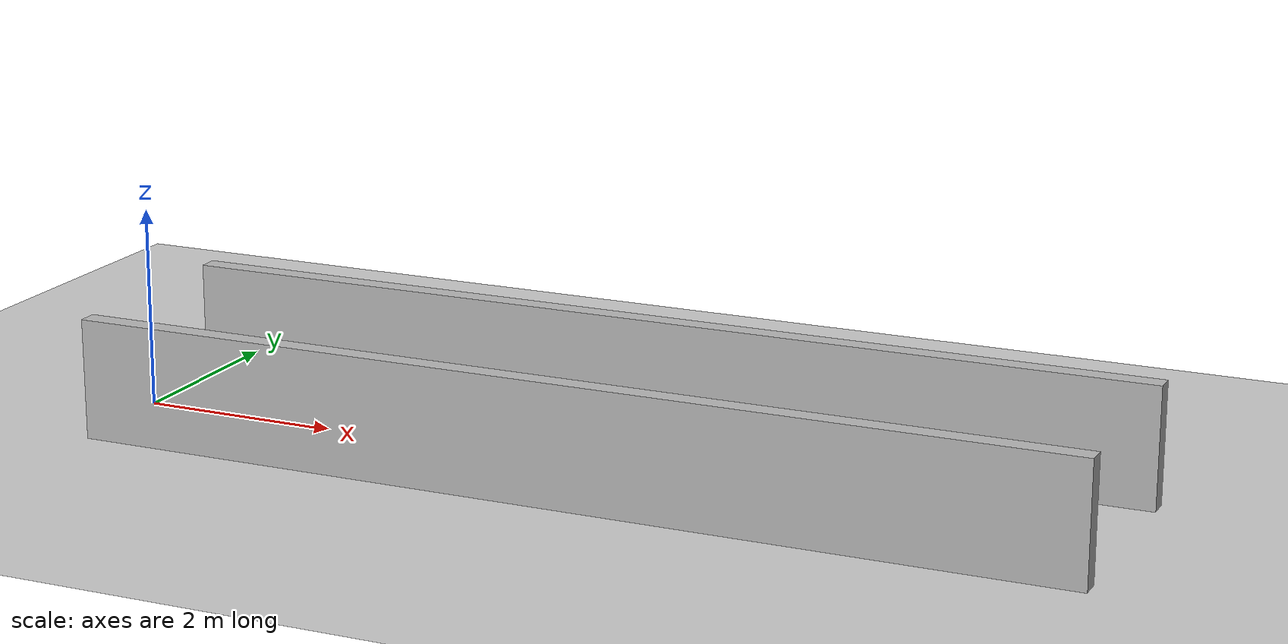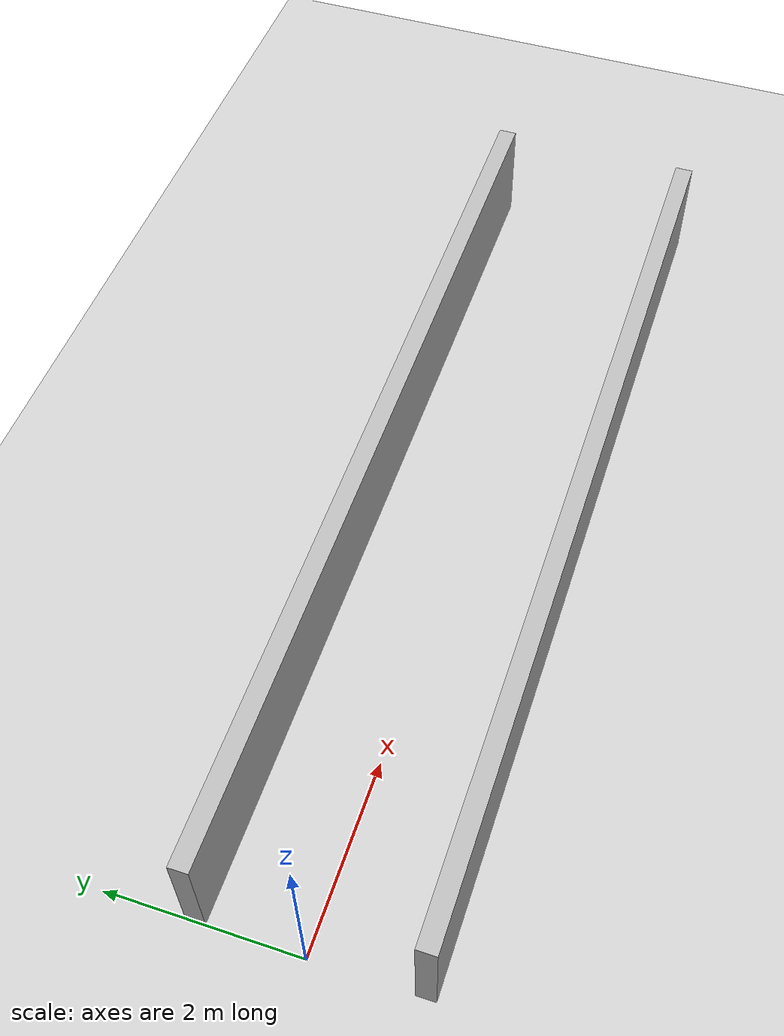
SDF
<?xml version="1.0"?>
<sdf version="1.6">
  <world name="v2-04g-p2-q1-support-corridor-support-s5345">
    <gravity>0 0 -9.81</gravity>
    <physics name="v2_deterministic" type="ode">
      <max_step_size>0.002</max_step_size>
      <real_time_update_rate>500</real_time_update_rate>
    </physics>
    <include>
      <uri>model://sun</uri>
    </include>
    <include>
      <uri>model://ground_plane</uri>
    </include>
    <model name="corridor-left">
      <static>true</static>
      <pose>5.008791305 1.092934187 0.600000000 0 0 0.001942883</pose>
      <link name="link">
        <collision name="collision">
          <geometry>
            <box>
              <size>10.000000 0.200000 1.200000</size>
            </box>
          </geometry>
        </collision>
        <visual name="visual">
          <geometry>
            <box>
              <size>10.000000 0.200000 1.200000</size>
            </box>
          </geometry>
        </visual>
      </link>
    </model>
    <model name="corridor-right">
      <static>true</static>
      <pose>5.006149236 -1.113169450 0.600000000 0 0 0.000320282</pose>
      <link name="link">
        <collision name="collision">
          <geometry>
            <box>
              <size>10.000000 0.200000 1.200000</size>
            </box>
          </geometry>
        </collision>
        <visual name="visual">
          <geometry>
            <box>
              <size>10.000000 0.200000 1.200000</size>
            </box>
          </geometry>
        </visual>
      </link>
    </model>
  </world>
</sdf>
